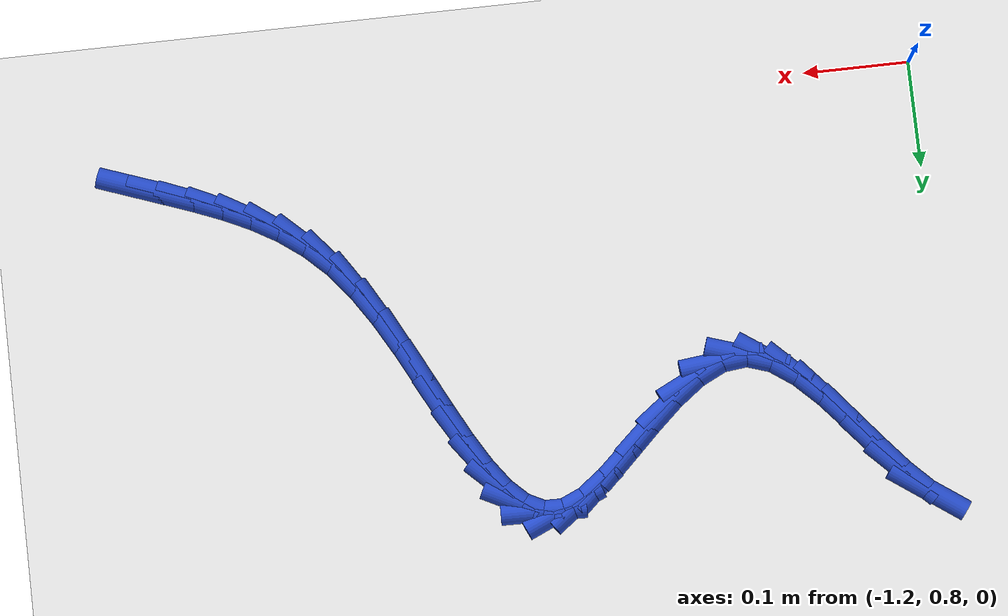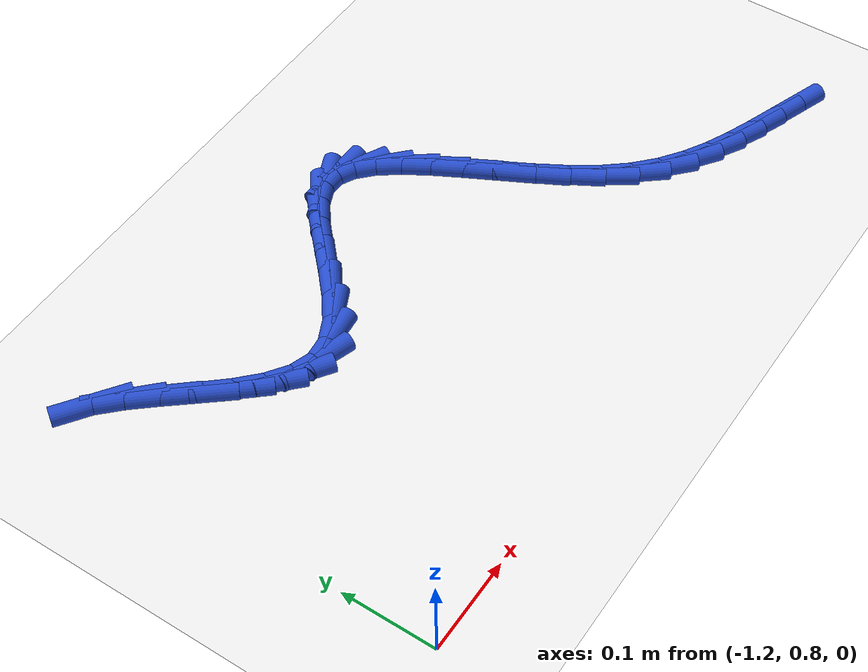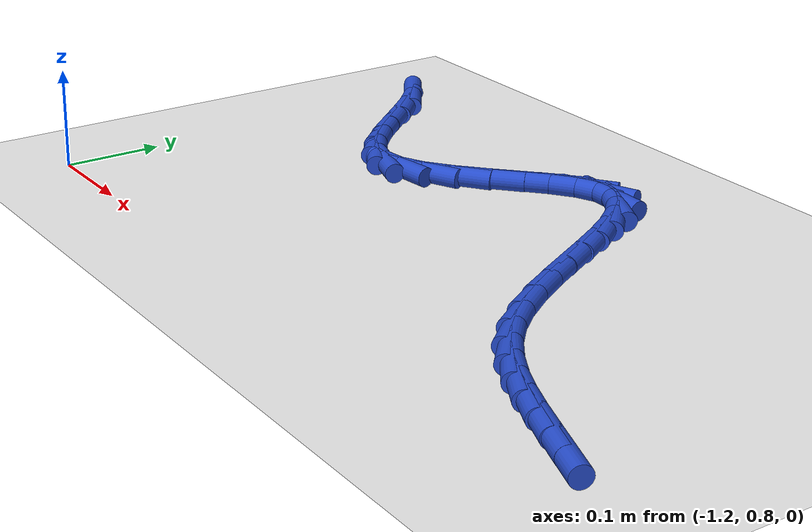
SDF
<sdf version="1.6">
 <world name="default">
  <model name="ground_plane">
   <static>1</static>
   <link name="link">
    <collision name="collision">
     <geometry><plane><normal>0 0 1</normal><size>100 100</size></plane></geometry>
     <surface><friction><ode><mu>100</mu><mu2>50</mu2></ode></friction></surface>
    </collision>
    <visual name="visual">
     <cast_shadows>0</cast_shadows>
     <geometry><plane><normal>0 0 1</normal><size>100 100</size></plane></geometry>
     <material>
      <script><uri>file://media/materials/scripts/gazebo.material</uri><name>Gazebo/WhiteGlow</name></script>
     </material>
    </visual>
   </link>
  </model>
  <model name="line">
   <link name="link_36">
    <pose>-0.4688365927517917 0.8419099180721734 0.01 0 1.57 -0.34911978540265187</pose>
    <collision name="collision">
     <geometry><cylinder><radius>0.01</radius><length>0.08</length></cylinder></geometry>
    </collision>
    <visual name="visual">
     <material>
      <script><name>Gazebo/Blue</name><uri>file://media/materials/scripts/gazebo.material</uri></script>
     </material>
     <geometry><cylinder><radius>0.01</radius><length>0.08</length></cylinder></geometry>
    </visual>
   </link>
   <link name="link_37">
    <pose>-0.4951687012425502 0.8514956301652337 0.01 0 1.57 -0.35336956734753167</pose>
    <collision name="collision">
     <geometry><cylinder><radius>0.01</radius><length>0.08</length></cylinder></geometry>
    </collision>
    <visual name="visual">
     <material>
      <script><name>Gazebo/Blue</name><uri>file://media/materials/scripts/gazebo.material</uri></script>
     </material>
     <geometry><cylinder><radius>0.01</radius><length>0.08</length></cylinder></geometry>
    </visual>
   </link>
   <link name="link_38">
    <pose>-0.5214464919443004 0.861188239512437 0.01 0 1.57 -0.3843411002504752</pose>
    <collision name="collision">
     <geometry><cylinder><radius>0.01</radius><length>0.08</length></cylinder></geometry>
    </collision>
    <visual name="visual">
     <material>
      <script><name>Gazebo/Blue</name><uri>file://media/materials/scripts/gazebo.material</uri></script>
     </material>
     <geometry><cylinder><radius>0.01</radius><length>0.08</length></cylinder></geometry>
    </visual>
   </link>
   <link name="link_39">
    <pose>-0.547395710236344 0.8716835340833003 0.01 0 1.57 -0.44197401316748347</pose>
    <collision name="collision">
     <geometry><cylinder><radius>0.01</radius><length>0.08</length></cylinder></geometry>
    </collision>
    <visual name="visual">
     <material>
      <script><name>Gazebo/Blue</name><uri>file://media/materials/scripts/gazebo.material</uri></script>
     </material>
     <geometry><cylinder><radius>0.01</radius><length>0.08</length></cylinder></geometry>
    </visual>
   </link>
   <link name="link_40">
    <pose>-0.5727421014979822 0.8836773018473388 0.01 0 1.57 -0.5254562444469503</pose>
    <collision name="collision">
     <geometry><cylinder><radius>0.01</radius><length>0.08</length></cylinder></geometry>
    </collision>
    <visual name="visual">
     <material>
      <script><name>Gazebo/Blue</name><uri>file://media/materials/scripts/gazebo.material</uri></script>
     </material>
     <geometry><cylinder><radius>0.01</radius><length>0.08</length></cylinder></geometry>
    </visual>
   </link>
   <link name="link_41">
    <pose>-0.5972114111085175 0.89786533077407 0.01 0 1.57 -0.6321414716892398</pose>
    <collision name="collision">
     <geometry><cylinder><radius>0.01</radius><length>0.08</length></cylinder></geometry>
    </collision>
    <visual name="visual">
     <material>
      <script><name>Gazebo/Blue</name><uri>file://media/materials/scripts/gazebo.material</uri></script>
     </material>
     <geometry><cylinder><radius>0.01</radius><length>0.08</length></cylinder></geometry>
    </visual>
   </link>
   <link name="link_42">
    <pose>-0.6205293844472503 0.9149434088330088 0.01 0 1.57 -0.7565393035027346</pose>
    <collision name="collision">
     <geometry><cylinder><radius>0.01</radius><length>0.08</length></cylinder></geometry>
    </collision>
    <visual name="visual">
     <material>
      <script><name>Gazebo/Blue</name><uri>file://media/materials/scripts/gazebo.material</uri></script>
     </material>
     <geometry><cylinder><radius>0.01</radius><length>0.08</length></cylinder></geometry>
    </visual>
   </link>
   <link name="link_43">
    <pose>-0.6424217668934827 0.9356073239936726 0.01 0 1.57 -0.887298377264902</pose>
    <collision name="collision">
     <geometry><cylinder><radius>0.01</radius><length>0.08</length></cylinder></geometry>
    </collision>
    <visual name="visual">
     <material>
      <script><name>Gazebo/Blue</name><uri>file://media/materials/scripts/gazebo.material</uri></script>
     </material>
     <geometry><cylinder><radius>0.01</radius><length>0.08</length></cylinder></geometry>
    </visual>
   </link>
   <link name="link_44">
    <pose>-0.6626471352729101 0.9604400834730122 0.01 0 1.57 -0.9892418732384034</pose>
    <collision name="collision">
     <geometry><cylinder><radius>0.01</radius><length>0.08</length></cylinder></geometry>
    </collision>
    <visual name="visual">
     <material>
      <script><name>Gazebo/Blue</name><uri>file://media/materials/scripts/gazebo.material</uri></script>
     </material>
     <geometry><cylinder><radius>0.01</radius><length>0.08</length></cylinder></geometry>
    </visual>
   </link>
   <link name="link_45">
    <pose>-0.6813114221710953 0.9888314773651247 0.01 0 1.57 -1.05363710817512</pose>
    <collision name="collision">
     <geometry><cylinder><radius>0.01</radius><length>0.08</length></cylinder></geometry>
    </collision>
    <visual name="visual">
     <material>
      <script><name>Gazebo/Blue</name><uri>file://media/materials/scripts/gazebo.material</uri></script>
     </material>
     <geometry><cylinder><radius>0.01</radius><length>0.08</length></cylinder></geometry>
    </visual>
   </link>
   <link name="link_46">
    <pose>-0.6987293764573156 1.0194539817188295 0.01 0 1.57 -1.0887638676970899</pose>
    <collision name="collision">
     <geometry><cylinder><radius>0.01</radius><length>0.08</length></cylinder></geometry>
    </collision>
    <visual name="visual">
     <material>
      <script><name>Gazebo/Blue</name><uri>file://media/materials/scripts/gazebo.material</uri></script>
     </material>
     <geometry><cylinder><radius>0.01</radius><length>0.08</length></cylinder></geometry>
    </visual>
   </link>
   <link name="link_47">
    <pose>-0.7152186008135264 1.050970269324891 0.01 0 1.57 -1.0983894036347013</pose>
    <collision name="collision">
     <geometry><cylinder><radius>0.01</radius><length>0.08</length></cylinder></geometry>
    </collision>
    <visual name="visual">
     <material>
      <script><name>Gazebo/Blue</name><uri>file://media/materials/scripts/gazebo.material</uri></script>
     </material>
     <geometry><cylinder><radius>0.01</radius><length>0.08</length></cylinder></geometry>
    </visual>
   </link>
   <link name="link_48">
    <pose>-0.7310966979216817 1.0820430129740726 0.01 0 1.57 -1.0818431435363232</pose>
    <collision name="collision">
     <geometry><cylinder><radius>0.01</radius><length>0.08</length></cylinder></geometry>
    </collision>
    <visual name="visual">
     <material>
      <script><name>Gazebo/Blue</name><uri>file://media/materials/scripts/gazebo.material</uri></script>
     </material>
     <geometry><cylinder><radius>0.01</radius><length>0.08</length></cylinder></geometry>
    </visual>
   </link>
   <link name="link_49">
    <pose>-0.7466812704637367 1.1113348854571383 0.01 0 1.57 -1.0330655330375513</pose>
    <collision name="collision">
     <geometry><cylinder><radius>0.01</radius><length>0.08</length></cylinder></geometry>
    </collision>
    <visual name="visual">
     <material>
      <script><name>Gazebo/Blue</name><uri>file://media/materials/scripts/gazebo.material</uri></script>
     </material>
     <geometry><cylinder><radius>0.01</radius><length>0.08</length></cylinder></geometry>
    </visual>
   </link>
   <link name="link_50">
    <pose>-0.7622899211216458 1.1375085595648509 0.01 0 1.57 -0.9373385538858532</pose>
    <collision name="collision">
     <geometry><cylinder><radius>0.01</radius><length>0.08</length></cylinder></geometry>
    </collision>
    <visual name="visual">
     <material>
      <script><name>Gazebo/Blue</name><uri>file://media/materials/scripts/gazebo.material</uri></script>
     </material>
     <geometry><cylinder><radius>0.01</radius><length>0.08</length></cylinder></geometry>
    </visual>
   </link>
   <link name="link_51">
    <pose>-0.778240252577364 1.1592267080879748 0.01 0 1.57 -0.7643678822628867</pose>
    <collision name="collision">
     <geometry><cylinder><radius>0.01</radius><length>0.08</length></cylinder></geometry>
    </collision>
    <visual name="visual">
     <material>
      <script><name>Gazebo/Blue</name><uri>file://media/materials/scripts/gazebo.material</uri></script>
     </material>
     <geometry><cylinder><radius>0.01</radius><length>0.08</length></cylinder></geometry>
    </visual>
   </link>
   <link name="link_52">
    <pose>-0.7948498675128458 1.1751520038172738 0.01 0 1.57 -0.46373245127838336</pose>
    <collision name="collision">
     <geometry><cylinder><radius>0.01</radius><length>0.08</length></cylinder></geometry>
    </collision>
    <visual name="visual">
     <material>
      <script><name>Gazebo/Blue</name><uri>file://media/materials/scripts/gazebo.material</uri></script>
     </material>
     <geometry><cylinder><radius>0.01</radius><length>0.08</length></cylinder></geometry>
    </visual>
   </link>
   <link name="link_53">
    <pose>-0.812436368610046 1.183947119543511 0.01 0 1.57 -0.017349495111616535</pose>
    <collision name="collision">
     <geometry><cylinder><radius>0.01</radius><length>0.08</length></cylinder></geometry>
    </collision>
    <visual name="visual">
     <material>
      <script><name>Gazebo/Blue</name><uri>file://media/materials/scripts/gazebo.material</uri></script>
     </material>
     <geometry><cylinder><radius>0.01</radius><length>0.08</length></cylinder></geometry>
    </visual>
   </link>
   <link name="link_54">
    <pose>-0.8313173585509193 1.1842747280574504 0.01 0 1.57 0.4126202887257371</pose>
    <collision name="collision">
     <geometry><cylinder><radius>0.01</radius><length>0.08</length></cylinder></geometry>
    </collision>
    <visual name="visual">
     <material>
      <script><name>Gazebo/Blue</name><uri>file://media/materials/scripts/gazebo.material</uri></script>
     </material>
     <geometry><cylinder><radius>0.01</radius><length>0.08</length></cylinder></geometry>
    </visual>
   </link>
   <link name="link_55">
    <pose>-0.8517294286098305 1.1753393436514845 0.01 0 1.57 0.6422386287900617</pose>
    <collision name="collision">
     <geometry><cylinder><radius>0.01</radius><length>0.08</length></cylinder></geometry>
    </collision>
    <visual name="visual">
     <material>
      <script><name>Gazebo/Blue</name><uri>file://media/materials/scripts/gazebo.material</uri></script>
     </material>
     <geometry><cylinder><radius>0.01</radius><length>0.08</length></cylinder></geometry>
    </visual>
   </link>
   <link name="link_56">
    <pose>-0.873504692965595 1.15905080920504 0.01 0 1.57 0.7407171454707382</pose>
    <collision name="collision">
     <geometry><cylinder><radius>0.01</radius><length>0.08</length></cylinder></geometry>
    </collision>
    <visual name="visual">
     <material>
      <script><name>Gazebo/Blue</name><uri>file://media/materials/scripts/gazebo.material</uri></script>
     </material>
     <geometry><cylinder><radius>0.01</radius><length>0.08</length></cylinder></geometry>
    </visual>
   </link>
   <link name="link_57">
    <pose>-0.896349284175867 1.1381615905418692 0.01 0 1.57 0.766356047504057</pose>
    <collision name="collision">
     <geometry><cylinder><radius>0.01</radius><length>0.08</length></cylinder></geometry>
    </collision>
    <visual name="visual">
     <material>
      <script><name>Gazebo/Blue</name><uri>file://media/materials/scripts/gazebo.material</uri></script>
     </material>
     <geometry><cylinder><radius>0.01</radius><length>0.08</length></cylinder></geometry>
    </visual>
   </link>
   <link name="link_58">
    <pose>-0.9199692940438952 1.1154244260699138 0.01 0 1.57 0.7360379812707823</pose>
    <collision name="collision">
     <geometry><cylinder><radius>0.01</radius><length>0.08</length></cylinder></geometry>
    </collision>
    <visual name="visual">
     <material>
      <script><name>Gazebo/Blue</name><uri>file://media/materials/scripts/gazebo.material</uri></script>
     </material>
     <geometry><cylinder><radius>0.01</radius><length>0.08</length></cylinder></geometry>
    </visual>
   </link>
   <link name="link_59">
    <pose>-0.9440708143729273 1.0935920541971154 0.01 0 1.57 0.6423934932449865</pose>
    <collision name="collision">
     <geometry><cylinder><radius>0.01</radius><length>0.08</length></cylinder></geometry>
    </collision>
    <visual name="visual">
     <material>
      <script><name>Gazebo/Blue</name><uri>file://media/materials/scripts/gazebo.material</uri></script>
     </material>
     <geometry><cylinder><radius>0.01</radius><length>0.08</length></cylinder></geometry>
    </visual>
   </link>
   <link name="link_60">
    <pose>-0.9683599369662113 1.075417213331415 0.01 0 1.57 0.45277706542278295</pose>
    <collision name="collision">
     <geometry><cylinder><radius>0.01</radius><length>0.08</length></cylinder></geometry>
    </collision>
    <visual name="visual">
     <material>
      <script><name>Gazebo/Blue</name><uri>file://media/materials/scripts/gazebo.material</uri></script>
     </material>
     <geometry><cylinder><radius>0.01</radius><length>0.08</length></cylinder></geometry>
    </visual>
   </link>
   <link name="link_61">
    <pose>-0.9925427536269956 1.0636526418807553 0.01 0 1.57 0.10952757377420752</pose>
    <collision name="collision">
     <geometry><cylinder><radius>0.01</radius><length>0.08</length></cylinder></geometry>
    </collision>
    <visual name="visual">
     <material>
      <script><name>Gazebo/Blue</name><uri>file://media/materials/scripts/gazebo.material</uri></script>
     </material>
     <geometry><cylinder><radius>0.01</radius><length>0.08</length></cylinder></geometry>
    </visual>
   </link>
   <link name="link_62">
    <pose>-1.0163263213612683 1.0610372185790873 0.01 0 1.57 -0.3180639549718898</pose>
    <collision name="collision">
     <geometry><cylinder><radius>0.01</radius><length>0.08</length></cylinder></geometry>
    </collision>
    <visual name="visual">
     <material>
      <script><name>Gazebo/Blue</name><uri>file://media/materials/scripts/gazebo.material</uri></script>
     </material>
     <geometry><cylinder><radius>0.01</radius><length>0.08</length></cylinder></geometry>
    </visual>
   </link>
   <link name="link_63">
    <pose>-1.0395313875272298 1.0686773037761683 0.01 0 1.57 -0.6103851089538807</pose>
    <collision name="collision">
     <geometry><cylinder><radius>0.01</radius><length>0.08</length></cylinder></geometry>
    </collision>
    <visual name="visual">
     <material>
      <script><name>Gazebo/Blue</name><uri>file://media/materials/scripts/gazebo.material</uri></script>
     </material>
     <geometry><cylinder><radius>0.01</radius><length>0.08</length></cylinder></geometry>
    </visual>
   </link>
   <link name="link_64">
    <pose>-1.062197855483766 1.0845323223680103 0.01 0 1.57 -0.7735066864701194</pose>
    <collision name="collision">
     <geometry><cylinder><radius>0.01</radius><length>0.08</length></cylinder></geometry>
    </collision>
    <visual name="visual">
     <material>
      <script><name>Gazebo/Blue</name><uri>file://media/materials/scripts/gazebo.material</uri></script>
     </material>
     <geometry><cylinder><radius>0.01</radius><length>0.08</length></cylinder></geometry>
    </visual>
   </link>
   <link name="link_65">
    <pose>-1.0843905797893263 1.1062034165010073 0.01 0 1.57 -0.8557815024471132</pose>
    <collision name="collision">
     <geometry><cylinder><radius>0.01</radius><length>0.08</length></cylinder></geometry>
    </collision>
    <visual name="visual">
     <material>
      <script><name>Gazebo/Blue</name><uri>file://media/materials/scripts/gazebo.material</uri></script>
     </material>
     <geometry><cylinder><radius>0.01</radius><length>0.08</length></cylinder></geometry>
    </visual>
   </link>
   <link name="link_66">
    <pose>-1.106174415002361 1.1312917283215562 0.01 0 1.57 -0.8832386470894874</pose>
    <collision name="collision">
     <geometry><cylinder><radius>0.01</radius><length>0.08</length></cylinder></geometry>
    </collision>
    <visual name="visual">
     <material>
      <script><name>Gazebo/Blue</name><uri>file://media/materials/scripts/gazebo.material</uri></script>
     </material>
     <geometry><cylinder><radius>0.01</radius><length>0.08</length></cylinder></geometry>
    </visual>
   </link>
   <link name="link_67">
    <pose>-1.1276142156813185 1.1573983999760513 0.01 0 1.57 -0.8629455894529262</pose>
    <collision name="collision">
     <geometry><cylinder><radius>0.01</radius><length>0.08</length></cylinder></geometry>
    </collision>
    <visual name="visual">
     <material>
      <script><name>Gazebo/Blue</name><uri>file://media/materials/scripts/gazebo.material</uri></script>
     </material>
     <geometry><cylinder><radius>0.01</radius><length>0.08</length></cylinder></geometry>
    </visual>
   </link>
   <link name="link_68">
    <pose>-1.14877483638465 1.1821245736108887 0.01 0 1.57 -0.7854106350277952</pose>
    <collision name="collision">
     <geometry><cylinder><radius>0.01</radius><length>0.08</length></cylinder></geometry>
    </collision>
    <visual name="visual">
     <material>
      <script><name>Gazebo/Blue</name><uri>file://media/materials/scripts/gazebo.material</uri></script>
     </material>
     <geometry><cylinder><radius>0.01</radius><length>0.08</length></cylinder></geometry>
    </visual>
   </link>
   <link name="link_69">
    <pose>-1.1697211316708038 1.2030713913724627 0.01 0 1.57 -0.6174972747351658</pose>
    <collision name="collision">
     <geometry><cylinder><radius>0.01</radius><length>0.08</length></cylinder></geometry>
    </collision>
    <visual name="visual">
     <material>
      <script><name>Gazebo/Blue</name><uri>file://media/materials/scripts/gazebo.material</uri></script>
     </material>
     <geometry><cylinder><radius>0.01</radius><length>0.08</length></cylinder></geometry>
    </visual>
   </link>
  </model>
 </world>
</sdf>
